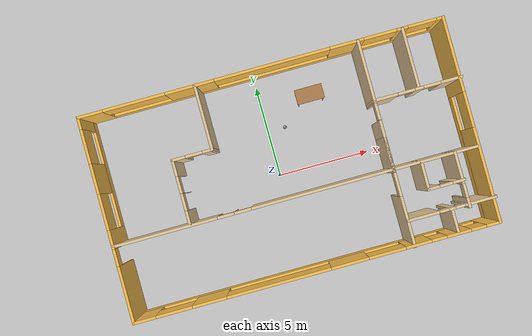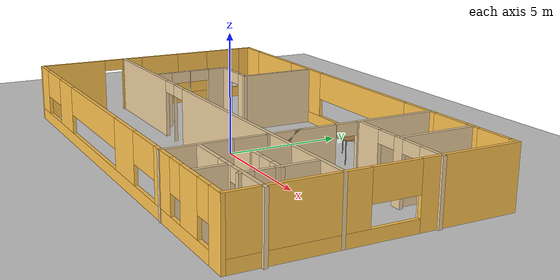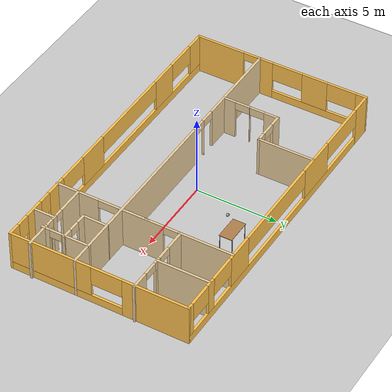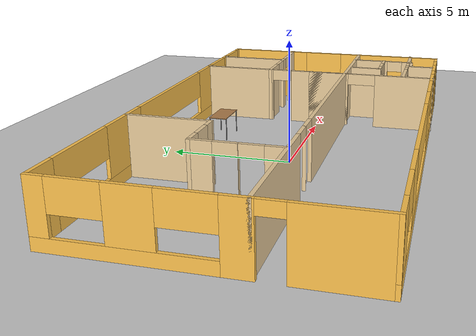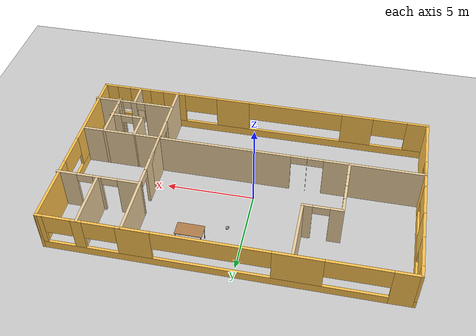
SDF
<sdf version="1.6">
 <world name="default">
  <model name="ground_plane">
   <static>1</static>
   <link name="link">
    <collision name="collision">
     <geometry><plane><normal>0 0 1</normal><size>100 100</size></plane></geometry>
     <surface>
      <contact><collide_bitmask>65535</collide_bitmask></contact>
      <friction><ode><mu>100</mu><mu2>50</mu2></ode></friction>
     </surface>
    </collision>
    <visual name="visual">
     <cast_shadows>0</cast_shadows>
     <geometry><plane><normal>0 0 1</normal><size>100 100</size></plane></geometry>
     <material>
      <script><uri>file://media/materials/scripts/gazebo.material</uri><name>Gazebo/Grey</name></script>
     </material>
    </visual>
   </link>
  </model>
  <model name="Untitled">
   <pose>0.58941 0.12908 0 0 -0 0</pose>
   <link name="Wall_10">
    <collision name="Wall_10_Collision">
     <geometry><box><size>3.5 0.15 2.5</size></box></geometry>
     <pose>0 0 1.25 0 -0 0</pose>
    </collision>
    <visual name="Wall_10_Visual">
     <pose>0 0 1.25 0 -0 0</pose>
     <geometry><box><size>3.5 0.15 2.5</size></box></geometry>
     <material>
      <script><uri>file://media/materials/scripts/gazebo.material</uri><name>Gazebo/Grey</name></script>
      <ambient>0.921569 0.807843 0.615686 1</ambient>
     </material>
     <meta><layer>0</layer></meta>
    </visual>
    <pose>-3.5542 3.7347 0 0 0 -1.5708</pose>
   </link>
   <link name="Wall_11">
    <pose>-4.6042 2.05971 0 0 -0 3.14159</pose>
    <visual name="Wall_11_Visual_0">
     <pose>-0.823056 0 1.25 0 -0 0</pose>
     <geometry><box><size>0.603887 0.15 2.5</size></box></geometry>
     <material>
      <script><uri>file://media/materials/scripts/gazebo.material</uri><name>Gazebo/Grey</name></script>
      <ambient>0.921569 0.807843 0.615686 1</ambient>
     </material>
     <meta><layer>0</layer></meta>
    </visual>
    <collision name="Wall_11_Collision_0">
     <geometry><box><size>0.603887 0.15 2.5</size></box></geometry>
     <pose>-0.823056 0 1.25 0 -0 0</pose>
    </collision>
    <visual name="Wall_11_Visual_1">
     <pose>0.751944 0 1.25 0 -0 0</pose>
     <geometry><box><size>0.746113 0.15 2.5</size></box></geometry>
     <material>
      <script><uri>file://media/materials/scripts/gazebo.material</uri><name>Gazebo/Grey</name></script>
      <ambient>0.921569 0.807843 0.615686 1</ambient>
     </material>
     <meta><layer>0</layer></meta>
    </visual>
    <collision name="Wall_11_Collision_1">
     <geometry><box><size>0.746113 0.15 2.5</size></box></geometry>
     <pose>0.751944 0 1.25 0 -0 0</pose>
    </collision>
    <visual name="Wall_11_Visual_2">
     <pose>-0.071113 0 2.25 0 -0 0</pose>
     <geometry><box><size>0.9 0.15 0.5</size></box></geometry>
     <material>
      <script><uri>file://media/materials/scripts/gazebo.material</uri><name>Gazebo/Grey</name></script>
      <ambient>0.921569 0.807843 0.615686 1</ambient>
     </material>
     <meta><layer>0</layer></meta>
    </visual>
    <collision name="Wall_11_Collision_2">
     <geometry><box><size>0.9 0.15 0.5</size></box></geometry>
     <pose>-0.071113 0 2.25 0 -0 0</pose>
    </collision>
   </link>
   <link name="Wall_14">
    <pose>-5.6542 0.384705 0 0 0 -1.5708</pose>
    <visual name="Wall_14_Visual_0">
     <pose>-1.28764 0 1.25 0 -0 0</pose>
     <geometry><box><size>0.924715 0.15 2.5</size></box></geometry>
     <material>
      <script><uri>file://media/materials/scripts/gazebo.material</uri><name>Gazebo/Grey</name></script>
      <ambient>0.921569 0.807843 0.615686 1</ambient>
     </material>
     <meta><layer>0</layer></meta>
    </visual>
    <collision name="Wall_14_Collision_0">
     <geometry><box><size>0.924715 0.15 2.5</size></box></geometry>
     <pose>-1.28764 0 1.25 0 -0 0</pose>
    </collision>
    <visual name="Wall_14_Visual_1">
     <pose>0.083568 0 1.25 0 -0 0</pose>
     <geometry><box><size>0.017707 0.15 2.5</size></box></geometry>
     <material>
      <script><uri>file://media/materials/scripts/gazebo.material</uri><name>Gazebo/Grey</name></script>
      <ambient>0.921569 0.807843 0.615686 1</ambient>
     </material>
     <meta><layer>0</layer></meta>
    </visual>
    <collision name="Wall_14_Collision_1">
     <geometry><box><size>0.017707 0.15 2.5</size></box></geometry>
     <pose>0.083568 0 1.25 0 -0 0</pose>
    </collision>
    <visual name="Wall_14_Visual_2">
     <pose>1.37121 0 1.25 0 -0 0</pose>
     <geometry><box><size>0.757578 0.15 2.5</size></box></geometry>
     <material>
      <script><uri>file://media/materials/scripts/gazebo.material</uri><name>Gazebo/Grey</name></script>
      <ambient>0.921569 0.807843 0.615686 1</ambient>
     </material>
     <meta><layer>0</layer></meta>
    </visual>
    <collision name="Wall_14_Collision_2">
     <geometry><box><size>0.757578 0.15 2.5</size></box></geometry>
     <pose>1.37121 0 1.25 0 -0 0</pose>
    </collision>
    <visual name="Wall_14_Visual_3">
     <pose>-0.375285 0 2.25 0 -0 0</pose>
     <geometry><box><size>0.9 0.15 0.5</size></box></geometry>
     <material>
      <script><uri>file://media/materials/scripts/gazebo.material</uri><name>Gazebo/Grey</name></script>
      <ambient>0.921569 0.807843 0.615686 1</ambient>
     </material>
     <meta><layer>0</layer></meta>
    </visual>
    <collision name="Wall_14_Collision_3">
     <geometry><box><size>0.9 0.15 0.5</size></box></geometry>
     <pose>-0.375285 0 2.25 0 -0 0</pose>
    </collision>
    <visual name="Wall_14_Visual_4">
     <pose>0.542422 0 2.25 0 -0 0</pose>
     <geometry><box><size>0.9 0.15 0.5</size></box></geometry>
     <material>
      <script><uri>file://media/materials/scripts/gazebo.material</uri><name>Gazebo/Grey</name></script>
      <ambient>0.921569 0.807843 0.615686 1</ambient>
     </material>
     <meta><layer>0</layer></meta>
    </visual>
    <collision name="Wall_14_Collision_4">
     <geometry><box><size>0.9 0.15 0.5</size></box></geometry>
     <pose>0.542422 0 2.25 0 -0 0</pose>
    </collision>
   </link>
   <link name="Wall_16">
    <pose>9.61657 0.015295 0 0 0 -1.5708</pose>
    <visual name="Wall_16_Visual_0">
     <pose>-3.48747 0 1.25 0 -0 0</pose>
     <geometry><box><size>4.02505 0.15 2.5</size></box></geometry>
     <material>
      <script><uri>file://media/materials/scripts/gazebo.material</uri><name>Gazebo/Grey</name></script>
      <ambient>1 0.764706 0.305882 1</ambient>
     </material>
     <meta><layer>0</layer></meta>
    </visual>
    <collision name="Wall_16_Collision_0">
     <geometry><box><size>4.02505 0.15 2.5</size></box></geometry>
     <pose>-3.48747 0 1.25 0 -0 0</pose>
    </collision>
    <visual name="Wall_16_Visual_1">
     <pose>2.01253 0 0.25 0 -0 0</pose>
     <geometry><box><size>6.97495 0.15 0.5</size></box></geometry>
     <material>
      <script><uri>file://media/materials/scripts/gazebo.material</uri><name>Gazebo/Grey</name></script>
      <ambient>1 0.764706 0.305882 1</ambient>
     </material>
     <meta><layer>0</layer></meta>
    </visual>
    <collision name="Wall_16_Collision_1">
     <geometry><box><size>6.97495 0.15 0.5</size></box></geometry>
     <pose>2.01253 0 0.25 0 -0 0</pose>
    </collision>
    <visual name="Wall_16_Visual_2">
     <pose>2.95609 0 1.5 0 -0 0</pose>
     <geometry><box><size>5.08781 0.15 2</size></box></geometry>
     <material>
      <script><uri>file://media/materials/scripts/gazebo.material</uri><name>Gazebo/Grey</name></script>
      <ambient>1 0.764706 0.305882 1</ambient>
     </material>
     <meta><layer>0</layer></meta>
    </visual>
    <collision name="Wall_16_Collision_2">
     <geometry><box><size>5.08781 0.15 2</size></box></geometry>
     <pose>2.95609 0 1.5 0 -0 0</pose>
    </collision>
    <visual name="Wall_16_Visual_3">
     <pose>-0.531379 0 1.9 0 -0 0</pose>
     <geometry><box><size>1.88714 0.15 1.2</size></box></geometry>
     <material>
      <script><uri>file://media/materials/scripts/gazebo.material</uri><name>Gazebo/Grey</name></script>
      <ambient>1 0.764706 0.305882 1</ambient>
     </material>
     <meta><layer>0</layer></meta>
    </visual>
    <collision name="Wall_16_Collision_3">
     <geometry><box><size>1.88714 0.15 1.2</size></box></geometry>
     <pose>-0.531379 0 1.9 0 -0 0</pose>
    </collision>
   </link>
   <link name="Wall_17">
    <pose>-0.058425 -5.4097 0 0 -0 3.14159</pose>
    <visual name="Wall_17_Visual_0">
     <pose>-9.34664 0 1.25 0 -0 0</pose>
     <geometry><box><size>0.806721 0.15 2.5</size></box></geometry>
     <material>
      <script><uri>file://media/materials/scripts/gazebo.material</uri><name>Gazebo/Grey</name></script>
      <ambient>1 0.764706 0.305882 1</ambient>
     </material>
     <meta><layer>0</layer></meta>
    </visual>
    <collision name="Wall_17_Collision_0">
     <geometry><box><size>0.806721 0.15 2.5</size></box></geometry>
     <pose>-9.34664 0 1.25 0 -0 0</pose>
    </collision>
    <visual name="Wall_17_Visual_1">
     <pose>0.403361 0 0.25 0 -0 0</pose>
     <geometry><box><size>18.6933 0.15 0.5</size></box></geometry>
     <material>
      <script><uri>file://media/materials/scripts/gazebo.material</uri><name>Gazebo/Grey</name></script>
      <ambient>1 0.764706 0.305882 1</ambient>
     </material>
     <meta><layer>0</layer></meta>
    </visual>
    <collision name="Wall_17_Collision_1">
     <geometry><box><size>18.6933 0.15 0.5</size></box></geometry>
     <pose>0.403361 0 0.25 0 -0 0</pose>
    </collision>
    <visual name="Wall_17_Visual_2">
     <pose>-7.5024 0 1.5 0 -0 0</pose>
     <geometry><box><size>1.28175 0.15 2</size></box></geometry>
     <material>
      <script><uri>file://media/materials/scripts/gazebo.material</uri><name>Gazebo/Grey</name></script>
      <ambient>1 0.764706 0.305882 1</ambient>
     </material>
     <meta><layer>0</layer></meta>
    </visual>
    <collision name="Wall_17_Collision_2">
     <geometry><box><size>1.28175 0.15 2</size></box></geometry>
     <pose>-7.5024 0 1.5 0 -0 0</pose>
    </collision>
    <visual name="Wall_17_Visual_3">
     <pose>-5.38313 0 1.5 0 -0 0</pose>
     <geometry><box><size>1.35679 0.15 2</size></box></geometry>
     <material>
      <script><uri>file://media/materials/scripts/gazebo.material</uri><name>Gazebo/Grey</name></script>
      <ambient>1 0.764706 0.305882 1</ambient>
     </material>
     <meta><layer>0</layer></meta>
    </visual>
    <collision name="Wall_17_Collision_3">
     <geometry><box><size>1.35679 0.15 2</size></box></geometry>
     <pose>-5.38313 0 1.5 0 -0 0</pose>
    </collision>
    <visual name="Wall_17_Visual_4">
     <pose>-1.74867 0 1.5 0 -0 0</pose>
     <geometry><box><size>1.98726 0.15 2</size></box></geometry>
     <material>
      <script><uri>file://media/materials/scripts/gazebo.material</uri><name>Gazebo/Grey</name></script>
      <ambient>1 0.764706 0.305882 1</ambient>
     </material>
     <meta><layer>0</layer></meta>
    </visual>
    <collision name="Wall_17_Collision_4">
     <geometry><box><size>1.98726 0.15 2</size></box></geometry>
     <pose>-1.74867 0 1.5 0 -0 0</pose>
    </collision>
    <visual name="Wall_17_Visual_5">
     <pose>5.67048 0 1.5 0 -0 0</pose>
     <geometry><box><size>1.81376 0.15 2</size></box></geometry>
     <material>
      <script><uri>file://media/materials/scripts/gazebo.material</uri><name>Gazebo/Grey</name></script>
      <ambient>1 0.764706 0.305882 1</ambient>
     </material>
     <meta><layer>0</layer></meta>
    </visual>
    <collision name="Wall_17_Collision_5">
     <geometry><box><size>1.81376 0.15 2</size></box></geometry>
     <pose>5.67048 0 1.5 0 -0 0</pose>
    </collision>
    <visual name="Wall_17_Visual_6">
     <pose>9.13038 0 1.5 0 -0 0</pose>
     <geometry><box><size>1.23924 0.15 2</size></box></geometry>
     <material>
      <script><uri>file://media/materials/scripts/gazebo.material</uri><name>Gazebo/Grey</name></script>
      <ambient>1 0.764706 0.305882 1</ambient>
     </material>
     <meta><layer>0</layer></meta>
    </visual>
    <collision name="Wall_17_Collision_6">
     <geometry><box><size>1.23924 0.15 2</size></box></geometry>
     <pose>9.13038 0 1.5 0 -0 0</pose>
    </collision>
    <visual name="Wall_17_Visual_7">
     <pose>-8.54328 0 1.9 0 -0 0</pose>
     <geometry><box><size>0.8 0.15 1.2</size></box></geometry>
     <material>
      <script><uri>file://media/materials/scripts/gazebo.material</uri><name>Gazebo/Grey</name></script>
      <ambient>1 0.764706 0.305882 1</ambient>
     </material>
     <meta><layer>0</layer></meta>
    </visual>
    <collision name="Wall_17_Collision_7">
     <geometry><box><size>0.8 0.15 1.2</size></box></geometry>
     <pose>-8.54328 0 1.9 0 -0 0</pose>
    </collision>
    <visual name="Wall_17_Visual_8">
     <pose>-6.46152 0 1.9 0 -0 0</pose>
     <geometry><box><size>0.8 0.15 1.2</size></box></geometry>
     <material>
      <script><uri>file://media/materials/scripts/gazebo.material</uri><name>Gazebo/Grey</name></script>
      <ambient>1 0.764706 0.305882 1</ambient>
     </material>
     <meta><layer>0</layer></meta>
    </visual>
    <collision name="Wall_17_Collision_8">
     <geometry><box><size>0.8 0.15 1.2</size></box></geometry>
     <pose>-6.46152 0 1.9 0 -0 0</pose>
    </collision>
    <visual name="Wall_17_Visual_9">
     <pose>-3.72352 0 1.9 0 -0 0</pose>
     <geometry><box><size>1.96243 0.15 1.2</size></box></geometry>
     <material>
      <script><uri>file://media/materials/scripts/gazebo.material</uri><name>Gazebo/Grey</name></script>
      <ambient>1 0.764706 0.305882 1</ambient>
     </material>
     <meta><layer>0</layer></meta>
    </visual>
    <collision name="Wall_17_Collision_9">
     <geometry><box><size>1.96243 0.15 1.2</size></box></geometry>
     <pose>-3.72352 0 1.9 0 -0 0</pose>
    </collision>
    <visual name="Wall_17_Visual_10">
     <pose>2.00428 0 1.9 0 -0 0</pose>
     <geometry><box><size>5.51864 0.15 1.2</size></box></geometry>
     <material>
      <script><uri>file://media/materials/scripts/gazebo.material</uri><name>Gazebo/Grey</name></script>
      <ambient>1 0.764706 0.305882 1</ambient>
     </material>
     <meta><layer>0</layer></meta>
    </visual>
    <collision name="Wall_17_Collision_10">
     <geometry><box><size>5.51864 0.15 1.2</size></box></geometry>
     <pose>2.00428 0 1.9 0 -0 0</pose>
    </collision>
    <visual name="Wall_17_Visual_11">
     <pose>7.54406 0 1.9 0 -0 0</pose>
     <geometry><box><size>1.9334 0.15 1.2</size></box></geometry>
     <material>
      <script><uri>file://media/materials/scripts/gazebo.material</uri><name>Gazebo/Grey</name></script>
      <ambient>1 0.764706 0.305882 1</ambient>
     </material>
     <meta><layer>0</layer></meta>
    </visual>
    <collision name="Wall_17_Collision_11">
     <geometry><box><size>1.9334 0.15 1.2</size></box></geometry>
     <pose>7.54406 0 1.9 0 -0 0</pose>
    </collision>
   </link>
   <link name="Wall_18">
    <pose>-9.73343 0.015295 0 0 -0 1.5708</pose>
    <visual name="Wall_18_Visual_0">
     <pose>-3.96666 0 1.25 0 -0 0</pose>
     <geometry><box><size>3.06668 0.15 2.5</size></box></geometry>
     <material>
      <script><uri>file://media/materials/scripts/gazebo.material</uri><name>Gazebo/Grey</name></script>
      <ambient>1 0.764706 0.305882 1</ambient>
     </material>
     <meta><layer>0</layer></meta>
    </visual>
    <collision name="Wall_18_Collision_0">
     <geometry><box><size>3.06668 0.15 2.5</size></box></geometry>
     <pose>-3.96666 0 1.25 0 -0 0</pose>
    </collision>
    <visual name="Wall_18_Visual_1">
     <pose>-1.03058 0 1.25 0 -0 0</pose>
     <geometry><box><size>1.00548 0.15 2.5</size></box></geometry>
     <material>
      <script><uri>file://media/materials/scripts/gazebo.material</uri><name>Gazebo/Grey</name></script>
      <ambient>1 0.764706 0.305882 1</ambient>
     </material>
     <meta><layer>0</layer></meta>
    </visual>
    <collision name="Wall_18_Collision_1">
     <geometry><box><size>1.00548 0.15 2.5</size></box></geometry>
     <pose>-1.03058 0 1.25 0 -0 0</pose>
    </collision>
    <visual name="Wall_18_Visual_2">
     <pose>2.48608 0 0.25 0 -0 0</pose>
     <geometry><box><size>6.02784 0.15 0.5</size></box></geometry>
     <material>
      <script><uri>file://media/materials/scripts/gazebo.material</uri><name>Gazebo/Grey</name></script>
      <ambient>1 0.764706 0.305882 1</ambient>
     </material>
     <meta><layer>0</layer></meta>
    </visual>
    <collision name="Wall_18_Collision_2">
     <geometry><box><size>6.02784 0.15 0.5</size></box></geometry>
     <pose>2.48608 0 0.25 0 -0 0</pose>
    </collision>
    <visual name="Wall_18_Visual_3">
     <pose>2.18522 0 1.5 0 -0 0</pose>
     <geometry><box><size>1.60558 0.15 2</size></box></geometry>
     <material>
      <script><uri>file://media/materials/scripts/gazebo.material</uri><name>Gazebo/Grey</name></script>
      <ambient>1 0.764706 0.305882 1</ambient>
     </material>
     <meta><layer>0</layer></meta>
    </visual>
    <collision name="Wall_18_Collision_3">
     <geometry><box><size>1.60558 0.15 2</size></box></geometry>
     <pose>2.18522 0 1.5 0 -0 0</pose>
    </collision>
    <visual name="Wall_18_Visual_4">
     <pose>5.15288 0 1.5 0 -0 0</pose>
     <geometry><box><size>0.694244 0.15 2</size></box></geometry>
     <material>
      <script><uri>file://media/materials/scripts/gazebo.material</uri><name>Gazebo/Grey</name></script>
      <ambient>1 0.764706 0.305882 1</ambient>
     </material>
     <meta><layer>0</layer></meta>
    </visual>
    <collision name="Wall_18_Collision_4">
     <geometry><box><size>0.694244 0.15 2</size></box></geometry>
     <pose>5.15288 0 1.5 0 -0 0</pose>
    </collision>
    <visual name="Wall_18_Visual_5">
     <pose>0.427291 0 1.9 0 -0 0</pose>
     <geometry><box><size>1.91027 0.15 1.2</size></box></geometry>
     <material>
      <script><uri>file://media/materials/scripts/gazebo.material</uri><name>Gazebo/Grey</name></script>
      <ambient>1 0.764706 0.305882 1</ambient>
     </material>
     <meta><layer>0</layer></meta>
    </visual>
    <collision name="Wall_18_Collision_5">
     <geometry><box><size>1.91027 0.15 1.2</size></box></geometry>
     <pose>0.427291 0 1.9 0 -0 0</pose>
    </collision>
    <visual name="Wall_18_Visual_6">
     <pose>3.89688 0 1.9 0 -0 0</pose>
     <geometry><box><size>1.81775 0.15 1.2</size></box></geometry>
     <material>
      <script><uri>file://media/materials/scripts/gazebo.material</uri><name>Gazebo/Grey</name></script>
      <ambient>1 0.764706 0.305882 1</ambient>
     </material>
     <meta><layer>0</layer></meta>
    </visual>
    <collision name="Wall_18_Collision_6">
     <geometry><box><size>1.81775 0.15 1.2</size></box></geometry>
     <pose>3.89688 0 1.9 0 -0 0</pose>
    </collision>
    <visual name="Wall_18_Visual_7">
     <pose>-1.98332 0 2.25 0 -0 0</pose>
     <geometry><box><size>0.9 0.15 0.5</size></box></geometry>
     <material>
      <script><uri>file://media/materials/scripts/gazebo.material</uri><name>Gazebo/Grey</name></script>
      <ambient>1 0.764706 0.305882 1</ambient>
     </material>
     <meta><layer>0</layer></meta>
    </visual>
    <collision name="Wall_18_Collision_7">
     <geometry><box><size>0.9 0.15 0.5</size></box></geometry>
     <pose>-1.98332 0 2.25 0 -0 0</pose>
    </collision>
   </link>
   <link name="Wall_20">
    <pose>-0.058425 -1.38133 0 0 -0 0</pose>
    <visual name="Wall_20_Visual_0">
     <pose>-6.96126 0 1.25 0 -0 0</pose>
     <geometry><box><size>5.57748 0.15 2.5</size></box></geometry>
     <material>
      <script><uri>file://media/materials/scripts/gazebo.material</uri><name>Gazebo/Grey</name></script>
      <ambient>0.921569 0.807843 0.615686 1</ambient>
     </material>
     <meta><layer>0</layer></meta>
    </visual>
    <collision name="Wall_20_Collision_0">
     <geometry><box><size>5.57748 0.15 2.5</size></box></geometry>
     <pose>-6.96126 0 1.25 0 -0 0</pose>
    </collision>
    <visual name="Wall_20_Visual_1">
     <pose>-3.26996 0 1.25 0 -0 0</pose>
     <geometry><box><size>0.005111 0.15 2.5</size></box></geometry>
     <material>
      <script><uri>file://media/materials/scripts/gazebo.material</uri><name>Gazebo/Grey</name></script>
      <ambient>0.921569 0.807843 0.615686 1</ambient>
     </material>
     <meta><layer>0</layer></meta>
    </visual>
    <collision name="Wall_20_Collision_1">
     <geometry><box><size>0.005111 0.15 2.5</size></box></geometry>
     <pose>-3.26996 0 1.25 0 -0 0</pose>
    </collision>
    <visual name="Wall_20_Visual_2">
     <pose>3.6913 0 1.25 0 -0 0</pose>
     <geometry><box><size>12.1174 0.15 2.5</size></box></geometry>
     <material>
      <script><uri>file://media/materials/scripts/gazebo.material</uri><name>Gazebo/Grey</name></script>
      <ambient>0.921569 0.807843 0.615686 1</ambient>
     </material>
     <meta><layer>0</layer></meta>
    </visual>
    <collision name="Wall_20_Collision_2">
     <geometry><box><size>12.1174 0.15 2.5</size></box></geometry>
     <pose>3.6913 0 1.25 0 -0 0</pose>
    </collision>
    <visual name="Wall_20_Visual_3">
     <pose>-3.72252 0 2.25 0 -0 0</pose>
     <geometry><box><size>0.9 0.15 0.5</size></box></geometry>
     <material>
      <script><uri>file://media/materials/scripts/gazebo.material</uri><name>Gazebo/Grey</name></script>
      <ambient>0.921569 0.807843 0.615686 1</ambient>
     </material>
     <meta><layer>0</layer></meta>
    </visual>
    <collision name="Wall_20_Collision_3">
     <geometry><box><size>0.9 0.15 0.5</size></box></geometry>
     <pose>-3.72252 0 2.25 0 -0 0</pose>
    </collision>
    <visual name="Wall_20_Visual_4">
     <pose>-2.81741 0 2.25 0 -0 0</pose>
     <geometry><box><size>0.9 0.15 0.5</size></box></geometry>
     <material>
      <script><uri>file://media/materials/scripts/gazebo.material</uri><name>Gazebo/Grey</name></script>
      <ambient>0.921569 0.807843 0.615686 1</ambient>
     </material>
     <meta><layer>0</layer></meta>
    </visual>
    <collision name="Wall_20_Collision_4">
     <geometry><box><size>0.9 0.15 0.5</size></box></geometry>
     <pose>-2.81741 0 2.25 0 -0 0</pose>
    </collision>
   </link>
   <link name="Wall_22">
    <pose>5.10284 -0.015295 0 0 0 -1.5708</pose>
    <visual name="Wall_22_Visual_0">
     <pose>-3.8169 0 1.25 0 -0 0</pose>
     <geometry><box><size>3.3662 0.15 2.5</size></box></geometry>
     <material>
      <script><uri>file://media/materials/scripts/gazebo.material</uri><name>Gazebo/Grey</name></script>
      <ambient>0.921569 0.807843 0.615686 1</ambient>
     </material>
     <meta><layer>0</layer></meta>
    </visual>
    <collision name="Wall_22_Collision_0">
     <geometry><box><size>3.3662 0.15 2.5</size></box></geometry>
     <pose>-3.8169 0 1.25 0 -0 0</pose>
    </collision>
    <visual name="Wall_22_Visual_1">
     <pose>0.14955 0 1.25 0 -0 0</pose>
     <geometry><box><size>2.76671 0.15 2.5</size></box></geometry>
     <material>
      <script><uri>file://media/materials/scripts/gazebo.material</uri><name>Gazebo/Grey</name></script>
      <ambient>0.921569 0.807843 0.615686 1</ambient>
     </material>
     <meta><layer>0</layer></meta>
    </visual>
    <collision name="Wall_22_Collision_1">
     <geometry><box><size>2.76671 0.15 2.5</size></box></geometry>
     <pose>0.14955 0 1.25 0 -0 0</pose>
    </collision>
    <visual name="Wall_22_Visual_2">
     <pose>0.589031 0 1.25 0 -0 0</pose>
     <geometry><box><size>1.88774 0.15 2.5</size></box></geometry>
     <material>
      <script><uri>file://media/materials/scripts/gazebo.material</uri><name>Gazebo/Grey</name></script>
      <ambient>0.921569 0.807843 0.615686 1</ambient>
     </material>
     <meta><layer>0</layer></meta>
    </visual>
    <collision name="Wall_22_Collision_2">
     <geometry><box><size>1.88774 0.15 2.5</size></box></geometry>
     <pose>0.589031 0 1.25 0 -0 0</pose>
    </collision>
    <visual name="Wall_22_Visual_3">
     <pose>4.14747 0 1.25 0 -0 0</pose>
     <geometry><box><size>2.70505 0.15 2.5</size></box></geometry>
     <material>
      <script><uri>file://media/materials/scripts/gazebo.material</uri><name>Gazebo/Grey</name></script>
      <ambient>0.921569 0.807843 0.615686 1</ambient>
     </material>
     <meta><layer>0</layer></meta>
    </visual>
    <collision name="Wall_22_Collision_3">
     <geometry><box><size>2.70505 0.15 2.5</size></box></geometry>
     <pose>4.14747 0 1.25 0 -0 0</pose>
    </collision>
    <visual name="Wall_22_Visual_4">
     <pose>-1.69432 0 2.25 0 -0 0</pose>
     <geometry><box><size>0.878963 0.15 0.5</size></box></geometry>
     <material>
      <script><uri>file://media/materials/scripts/gazebo.material</uri><name>Gazebo/Grey</name></script>
      <ambient>0.921569 0.807843 0.615686 1</ambient>
     </material>
     <meta><layer>0</layer></meta>
    </visual>
    <collision name="Wall_22_Collision_4">
     <geometry><box><size>0.878963 0.15 0.5</size></box></geometry>
     <pose>-1.69432 0 2.25 0 -0 0</pose>
    </collision>
    <visual name="Wall_22_Visual_5">
     <pose>2.16392 0 2.25 0 -0 0</pose>
     <geometry><box><size>1.26204 0.15 0.5</size></box></geometry>
     <material>
      <script><uri>file://media/materials/scripts/gazebo.material</uri><name>Gazebo/Grey</name></script>
      <ambient>0.921569 0.807843 0.615686 1</ambient>
     </material>
     <meta><layer>0</layer></meta>
    </visual>
    <collision name="Wall_22_Collision_5">
     <geometry><box><size>1.26204 0.15 0.5</size></box></geometry>
     <pose>2.16392 0 2.25 0 -0 0</pose>
    </collision>
    <visual name="Wall_22_Visual_6">
     <pose>2.16392 0 2.25 0 -0 0</pose>
     <geometry><box><size>1.26204 0.15 0.5</size></box></geometry>
     <material>
      <script><uri>file://media/materials/scripts/gazebo.material</uri><name>Gazebo/Grey</name></script>
      <ambient>0.921569 0.807843 0.615686 1</ambient>
     </material>
     <meta><layer>0</layer></meta>
    </visual>
    <collision name="Wall_22_Collision_6">
     <geometry><box><size>1.26204 0.15 0.5</size></box></geometry>
     <pose>2.16392 0 2.25 0 -0 0</pose>
    </collision>
   </link>
   <link name="Wall_24">
    <pose>7.40284 2.25891 0 0 -0 0</pose>
    <visual name="Wall_24_Visual_0">
     <pose>-1.71576 0 1.25 0 -0 0</pose>
     <geometry><box><size>1.31848 0.15 2.5</size></box></geometry>
     <material>
      <script><uri>file://media/materials/scripts/gazebo.material</uri><name>Gazebo/Grey</name></script>
      <ambient>0.921569 0.807843 0.615686 1</ambient>
     </material>
     <meta><layer>0</layer></meta>
    </visual>
    <collision name="Wall_24_Collision_0">
     <geometry><box><size>1.31848 0.15 2.5</size></box></geometry>
     <pose>-1.71576 0 1.25 0 -0 0</pose>
    </collision>
    <visual name="Wall_24_Visual_1">
     <pose>0.075836 0 1.25 0 -0 0</pose>
     <geometry><box><size>0.464706 0.15 2.5</size></box></geometry>
     <material>
      <script><uri>file://media/materials/scripts/gazebo.material</uri><name>Gazebo/Grey</name></script>
      <ambient>0.921569 0.807843 0.615686 1</ambient>
     </material>
     <meta><layer>0</layer></meta>
    </visual>
    <collision name="Wall_24_Collision_1">
     <geometry><box><size>0.464706 0.15 2.5</size></box></geometry>
     <pose>0.075836 0 1.25 0 -0 0</pose>
    </collision>
    <visual name="Wall_24_Visual_2">
     <pose>1.7916 0 1.25 0 -0 0</pose>
     <geometry><box><size>1.16681 0.15 2.5</size></box></geometry>
     <material>
      <script><uri>file://media/materials/scripts/gazebo.material</uri><name>Gazebo/Grey</name></script>
      <ambient>0.921569 0.807843 0.615686 1</ambient>
     </material>
     <meta><layer>0</layer></meta>
    </visual>
    <collision name="Wall_24_Collision_2">
     <geometry><box><size>1.16681 0.15 2.5</size></box></geometry>
     <pose>1.7916 0 1.25 0 -0 0</pose>
    </collision>
    <visual name="Wall_24_Visual_3">
     <pose>-0.606517 0 2.25 0 -0 0</pose>
     <geometry><box><size>0.9 0.15 0.5</size></box></geometry>
     <material>
      <script><uri>file://media/materials/scripts/gazebo.material</uri><name>Gazebo/Grey</name></script>
      <ambient>0.921569 0.807843 0.615686 1</ambient>
     </material>
     <meta><layer>0</layer></meta>
    </visual>
    <collision name="Wall_24_Collision_3">
     <geometry><box><size>0.9 0.15 0.5</size></box></geometry>
     <pose>-0.606517 0 2.25 0 -0 0</pose>
    </collision>
    <visual name="Wall_24_Visual_4">
     <pose>0.758189 0 2.25 0 -0 0</pose>
     <geometry><box><size>0.9 0.15 0.5</size></box></geometry>
     <material>
      <script><uri>file://media/materials/scripts/gazebo.material</uri><name>Gazebo/Grey</name></script>
      <ambient>0.921569 0.807843 0.615686 1</ambient>
     </material>
     <meta><layer>0</layer></meta>
    </visual>
    <collision name="Wall_24_Collision_4">
     <geometry><box><size>0.9 0.15 0.5</size></box></geometry>
     <pose>0.758189 0 2.25 0 -0 0</pose>
    </collision>
   </link>
   <link name="Wall_26">
    <collision name="Wall_26_Collision">
     <geometry><box><size>3.25 0.15 2.5</size></box></geometry>
     <pose>0 0 1.25 0 -0 0</pose>
    </collision>
    <visual name="Wall_26_Visual">
     <pose>0 0 1.25 0 -0 0</pose>
     <geometry><box><size>3.25 0.15 2.5</size></box></geometry>
     <material>
      <script><uri>file://media/materials/scripts/gazebo.material</uri><name>Gazebo/Grey</name></script>
      <ambient>0.921569 0.807843 0.615686 1</ambient>
     </material>
     <meta><layer>0</layer></meta>
    </visual>
    <pose>7.45828 3.8597 0 0 0 -1.5708</pose>
   </link>
   <link name="Wall_28">
    <pose>7.43343 -4.10386 0 0 -0 0</pose>
    <visual name="Wall_28_Visual_0">
     <pose>-1.5171 0 1.25 0 -0 0</pose>
     <geometry><box><size>1.71581 0.15 2.5</size></box></geometry>
     <material>
      <script><uri>file://media/materials/scripts/gazebo.material</uri><name>Gazebo/Grey</name></script>
      <ambient>0.921569 0.807843 0.615686 1</ambient>
     </material>
     <meta><layer>0</layer></meta>
    </visual>
    <collision name="Wall_28_Collision_0">
     <geometry><box><size>1.71581 0.15 2.5</size></box></geometry>
     <pose>-1.5171 0 1.25 0 -0 0</pose>
    </collision>
    <visual name="Wall_28_Visual_1">
     <pose>0.022115 0 1.25 0 -0 0</pose>
     <geometry><box><size>0.349052 0.15 2.5</size></box></geometry>
     <material>
      <script><uri>file://media/materials/scripts/gazebo.material</uri><name>Gazebo/Grey</name></script>
      <ambient>0.921569 0.807843 0.615686 1</ambient>
     </material>
     <meta><layer>0</layer></meta>
    </visual>
    <collision name="Wall_28_Collision_1">
     <geometry><box><size>0.349052 0.15 2.5</size></box></geometry>
     <pose>0.022115 0 1.25 0 -0 0</pose>
    </collision>
    <visual name="Wall_28_Visual_2">
     <pose>1.53921 0 1.25 0 -0 0</pose>
     <geometry><box><size>1.67158 0.15 2.5</size></box></geometry>
     <material>
      <script><uri>file://media/materials/scripts/gazebo.material</uri><name>Gazebo/Grey</name></script>
      <ambient>0.921569 0.807843 0.615686 1</ambient>
     </material>
     <meta><layer>0</layer></meta>
    </visual>
    <collision name="Wall_28_Collision_2">
     <geometry><box><size>1.67158 0.15 2.5</size></box></geometry>
     <pose>1.53921 0 1.25 0 -0 0</pose>
    </collision>
    <visual name="Wall_28_Visual_3">
     <pose>-0.405801 0 2.25 0 -0 0</pose>
     <geometry><box><size>0.50678 0.15 0.5</size></box></geometry>
     <material>
      <script><uri>file://media/materials/scripts/gazebo.material</uri><name>Gazebo/Grey</name></script>
      <ambient>0.921569 0.807843 0.615686 1</ambient>
     </material>
     <meta><layer>0</layer></meta>
    </visual>
    <collision name="Wall_28_Collision_3">
     <geometry><box><size>0.50678 0.15 0.5</size></box></geometry>
     <pose>-0.405801 0 2.25 0 -0 0</pose>
    </collision>
    <visual name="Wall_28_Visual_4">
     <pose>0.450031 0 2.25 0 -0 0</pose>
     <geometry><box><size>0.50678 0.15 0.5</size></box></geometry>
     <material>
      <script><uri>file://media/materials/scripts/gazebo.material</uri><name>Gazebo/Grey</name></script>
      <ambient>0.921569 0.807843 0.615686 1</ambient>
     </material>
     <meta><layer>0</layer></meta>
    </visual>
    <collision name="Wall_28_Collision_4">
     <geometry><box><size>0.50678 0.15 0.5</size></box></geometry>
     <pose>0.450031 0 2.25 0 -0 0</pose>
    </collision>
   </link>
   <link name="Wall_30">
    <pose>8.3454 -2.80633 0 0 0 -1.5708</pose>
    <visual name="Wall_30_Visual_0">
     <pose>-0.634862 0 1.25 0 -0 0</pose>
     <geometry><box><size>1.73028 0.15 2.5</size></box></geometry>
     <material>
      <script><uri>file://media/materials/scripts/gazebo.material</uri><name>Gazebo/Grey</name></script>
      <ambient>0.921569 0.807843 0.615686 1</ambient>
     </material>
     <meta><layer>0</layer></meta>
    </visual>
    <collision name="Wall_30_Collision_0">
     <geometry><box><size>1.73028 0.15 2.5</size></box></geometry>
     <pose>-0.634862 0 1.25 0 -0 0</pose>
    </collision>
    <visual name="Wall_30_Visual_1">
     <pose>1.22463 0 1.25 0 -0 0</pose>
     <geometry><box><size>0.550746 0.15 2.5</size></box></geometry>
     <material>
      <script><uri>file://media/materials/scripts/gazebo.material</uri><name>Gazebo/Grey</name></script>
      <ambient>0.921569 0.807843 0.615686 1</ambient>
     </material>
     <meta><layer>0</layer></meta>
    </visual>
    <collision name="Wall_30_Collision_1">
     <geometry><box><size>0.550746 0.15 2.5</size></box></geometry>
     <pose>1.22463 0 1.25 0 -0 0</pose>
    </collision>
    <visual name="Wall_30_Visual_2">
     <pose>0.589765 0 2.25 0 -0 0</pose>
     <geometry><box><size>0.718978 0.15 0.5</size></box></geometry>
     <material>
      <script><uri>file://media/materials/scripts/gazebo.material</uri><name>Gazebo/Grey</name></script>
      <ambient>0.921569 0.807843 0.615686 1</ambient>
     </material>
     <meta><layer>0</layer></meta>
    </visual>
    <collision name="Wall_30_Collision_2">
     <geometry><box><size>0.718978 0.15 0.5</size></box></geometry>
     <pose>0.589765 0 2.25 0 -0 0</pose>
    </collision>
   </link>
   <link name="Wall_32">
    <collision name="Wall_32_Collision">
     <geometry><box><size>1.60934 0.15 2.5</size></box></geometry>
     <pose>0 0 1.25 0 -0 0</pose>
    </collision>
    <visual name="Wall_32_Visual">
     <pose>0 0 1.25 0 -0 0</pose>
     <geometry><box><size>1.60934 0.15 2.5</size></box></geometry>
     <material>
      <script><uri>file://media/materials/scripts/gazebo.material</uri><name>Gazebo/Grey</name></script>
      <ambient>0.921569 0.807843 0.615686 1</ambient>
     </material>
     <meta><layer>0</layer></meta>
    </visual>
    <pose>6.56111 -2.11093 0 0 0 -1.58458</pose>
   </link>
   <link name="Wall_33">
    <pose>7.49617 -2.84053 0 0 -0 0</pose>
    <visual name="Wall_33_Visual_0">
     <pose>-0.676442 0 1.25 0 -0 0</pose>
     <geometry><box><size>0.647116 0.15 2.5</size></box></geometry>
     <material>
      <script><uri>file://media/materials/scripts/gazebo.material</uri><name>Gazebo/Grey</name></script>
      <ambient>0.921569 0.807843 0.615686 1</ambient>
     </material>
     <meta><layer>0</layer></meta>
    </visual>
    <collision name="Wall_33_Collision_0">
     <geometry><box><size>0.647116 0.15 2.5</size></box></geometry>
     <pose>-0.676442 0 1.25 0 -0 0</pose>
    </collision>
    <visual name="Wall_33_Visual_1">
     <pose>0.662933 0 1.25 0 -0 0</pose>
     <geometry><box><size>0.674133 0.15 2.5</size></box></geometry>
     <material>
      <script><uri>file://media/materials/scripts/gazebo.material</uri><name>Gazebo/Grey</name></script>
      <ambient>0.921569 0.807843 0.615686 1</ambient>
     </material>
     <meta><layer>0</layer></meta>
    </visual>
    <collision name="Wall_33_Collision_1">
     <geometry><box><size>0.674133 0.15 2.5</size></box></geometry>
     <pose>0.662933 0 1.25 0 -0 0</pose>
    </collision>
    <visual name="Wall_33_Visual_2">
     <pose>-0.013509 0 2.25 0 -0 0</pose>
     <geometry><box><size>0.678751 0.15 0.5</size></box></geometry>
     <material>
      <script><uri>file://media/materials/scripts/gazebo.material</uri><name>Gazebo/Grey</name></script>
      <ambient>0.921569 0.807843 0.615686 1</ambient>
     </material>
     <meta><layer>0</layer></meta>
    </visual>
    <collision name="Wall_33_Collision_2">
     <geometry><box><size>0.678751 0.15 0.5</size></box></geometry>
     <pose>-0.013509 0 2.25 0 -0 0</pose>
    </collision>
   </link>
   <link name="Wall_35">
    <collision name="Wall_35_Collision">
     <geometry><box><size>1.25 0.15 2.5</size></box></geometry>
     <pose>0 0 1.25 0 -0 0</pose>
    </collision>
    <visual name="Wall_35_Visual">
     <pose>0 0 1.25 0 -0 0</pose>
     <geometry><box><size>1.25 0.15 2.5</size></box></geometry>
     <material>
      <script><uri>file://media/materials/scripts/gazebo.material</uri><name>Gazebo/Grey</name></script>
      <ambient>0.921569 0.807843 0.615686 1</ambient>
     </material>
     <meta><layer>0</layer></meta>
    </visual>
    <pose>7.42769 -4.74563 0 0 0 -1.5708</pose>
   </link>
   <link name="Wall_5">
    <pose>-0.058425 5.44029 0 0 -0 0</pose>
    <visual name="Wall_5_Visual_0">
     <pose>-9.06099 0 1.25 0 -0 0</pose>
     <geometry><box><size>1.37802 0.15 2.5</size></box></geometry>
     <material>
      <script><uri>file://media/materials/scripts/gazebo.material</uri><name>Gazebo/Grey</name></script>
      <ambient>1 0.764706 0.305882 1</ambient>
     </material>
     <meta><layer>0</layer></meta>
    </visual>
    <collision name="Wall_5_Collision_0">
     <geometry><box><size>1.37802 0.15 2.5</size></box></geometry>
     <pose>-9.06099 0 1.25 0 -0 0</pose>
    </collision>
    <visual name="Wall_5_Visual_1">
     <pose>0.689012 0 0.25 0 -0 0</pose>
     <geometry><box><size>18.122 0.15 0.5</size></box></geometry>
     <material>
      <script><uri>file://media/materials/scripts/gazebo.material</uri><name>Gazebo/Grey</name></script>
      <ambient>1 0.764706 0.305882 1</ambient>
     </material>
     <meta><layer>0</layer></meta>
    </visual>
    <collision name="Wall_5_Collision_1">
     <geometry><box><size>18.122 0.15 0.5</size></box></geometry>
     <pose>0.689012 0 0.25 0 -0 0</pose>
    </collision>
    <visual name="Wall_5_Visual_2">
     <pose>-3.77377 0 1.5 0 -0 0</pose>
     <geometry><box><size>2.6002 0.15 2</size></box></geometry>
     <material>
      <script><uri>file://media/materials/scripts/gazebo.material</uri><name>Gazebo/Grey</name></script>
      <ambient>1 0.764706 0.305882 1</ambient>
     </material>
     <meta><layer>0</layer></meta>
    </visual>
    <collision name="Wall_5_Collision_2">
     <geometry><box><size>2.6002 0.15 2</size></box></geometry>
     <pose>-3.77377 0 1.5 0 -0 0</pose>
    </collision>
    <visual name="Wall_5_Visual_3">
     <pose>4.57482 0 1.5 0 -0 0</pose>
     <geometry><box><size>1.81063 0.15 2</size></box></geometry>
     <material>
      <script><uri>file://media/materials/scripts/gazebo.material</uri><name>Gazebo/Grey</name></script>
      <ambient>1 0.764706 0.305882 1</ambient>
     </material>
     <meta><layer>0</layer></meta>
    </visual>
    <collision name="Wall_5_Collision_3">
     <geometry><box><size>1.81063 0.15 2</size></box></geometry>
     <pose>4.57482 0 1.5 0 -0 0</pose>
    </collision>
    <visual name="Wall_5_Visual_4">
     <pose>7.52436 0 1.5 0 -0 0</pose>
     <geometry><box><size>0.591855 0.15 2</size></box></geometry>
     <material>
      <script><uri>file://media/materials/scripts/gazebo.material</uri><name>Gazebo/Grey</name></script>
      <ambient>1 0.764706 0.305882 1</ambient>
     </material>
     <meta><layer>0</layer></meta>
    </visual>
    <collision name="Wall_5_Collision_4">
     <geometry><box><size>0.591855 0.15 2</size></box></geometry>
     <pose>7.52436 0 1.5 0 -0 0</pose>
    </collision>
    <visual name="Wall_5_Visual_5">
     <pose>9.53693 0 1.5 0 -0 0</pose>
     <geometry><box><size>0.426141 0.15 2</size></box></geometry>
     <material>
      <script><uri>file://media/materials/scripts/gazebo.material</uri><name>Gazebo/Grey</name></script>
      <ambient>1 0.764706 0.305882 1</ambient>
     </material>
     <meta><layer>0</layer></meta>
    </visual>
    <collision name="Wall_5_Collision_5">
     <geometry><box><size>0.426141 0.15 2</size></box></geometry>
     <pose>9.53693 0 1.5 0 -0 0</pose>
    </collision>
    <visual name="Wall_5_Visual_6">
     <pose>-6.72292 0 1.9 0 -0 0</pose>
     <geometry><box><size>3.29811 0.15 1.2</size></box></geometry>
     <material>
      <script><uri>file://media/materials/scripts/gazebo.material</uri><name>Gazebo/Grey</name></script>
      <ambient>1 0.764706 0.305882 1</ambient>
     </material>
     <meta><layer>0</layer></meta>
    </visual>
    <collision name="Wall_5_Collision_6">
     <geometry><box><size>3.29811 0.15 1.2</size></box></geometry>
     <pose>-6.72292 0 1.9 0 -0 0</pose>
    </collision>
    <visual name="Wall_5_Visual_7">
     <pose>0.597915 0 1.9 0 -0 0</pose>
     <geometry><box><size>6.14317 0.15 1.2</size></box></geometry>
     <material>
      <script><uri>file://media/materials/scripts/gazebo.material</uri><name>Gazebo/Grey</name></script>
      <ambient>1 0.764706 0.305882 1</ambient>
     </material>
     <meta><layer>0</layer></meta>
    </visual>
    <collision name="Wall_5_Collision_7">
     <geometry><box><size>6.14317 0.15 1.2</size></box></geometry>
     <pose>0.597915 0 1.9 0 -0 0</pose>
    </collision>
    <visual name="Wall_5_Visual_8">
     <pose>6.35428 0 1.9 0 -0 0</pose>
     <geometry><box><size>1.7483 0.15 1.2</size></box></geometry>
     <material>
      <script><uri>file://media/materials/scripts/gazebo.material</uri><name>Gazebo/Grey</name></script>
      <ambient>1 0.764706 0.305882 1</ambient>
     </material>
     <meta><layer>0</layer></meta>
    </visual>
    <collision name="Wall_5_Collision_8">
     <geometry><box><size>1.7483 0.15 1.2</size></box></geometry>
     <pose>6.35428 0 1.9 0 -0 0</pose>
    </collision>
    <visual name="Wall_5_Visual_9">
     <pose>8.57207 0 1.9 0 -0 0</pose>
     <geometry><box><size>1.50358 0.15 1.2</size></box></geometry>
     <material>
      <script><uri>file://media/materials/scripts/gazebo.material</uri><name>Gazebo/Grey</name></script>
      <ambient>1 0.764706 0.305882 1</ambient>
     </material>
     <meta><layer>0</layer></meta>
    </visual>
    <collision name="Wall_5_Collision_9">
     <geometry><box><size>1.50358 0.15 1.2</size></box></geometry>
     <pose>8.57207 0 1.9 0 -0 0</pose>
    </collision>
   </link>
   <static>1</static>
  </model>
  <model name="table_2">
   <static>1</static>
   <link name="link">
    <collision name="surface">
     <pose>0 0 1 0 -0 0</pose>
     <geometry><box><size>1.5 0.8 0.03</size></box></geometry>
     <surface><friction><ode><mu>0.6</mu><mu2>0.6</mu2></ode></friction></surface>
    </collision>
    <visual name="visual1">
     <pose>0 0 1 0 -0 0</pose>
     <geometry><box><size>1.5 0.8 0.03</size></box></geometry>
     <material>
      <script><uri>file://media/materials/scripts/gazebo.material</uri><name>Gazebo/Wood</name></script>
     </material>
    </visual>
    <collision name="front_left_leg">
     <pose>0.68 0.38 0.5 0 -0 0</pose>
     <geometry><cylinder><radius>0.02</radius><length>1</length></cylinder></geometry>
    </collision>
    <visual name="front_left_leg">
     <pose>0.68 0.38 0.5 0 -0 0</pose>
     <geometry><cylinder><radius>0.02</radius><length>1</length></cylinder></geometry>
     <material>
      <script><uri>file://media/materials/scripts/gazebo.material</uri><name>Gazebo/Grey</name></script>
     </material>
    </visual>
    <collision name="front_right_leg">
     <pose>0.68 -0.38 0.5 0 -0 0</pose>
     <geometry><cylinder><radius>0.02</radius><length>1</length></cylinder></geometry>
    </collision>
    <visual name="front_right_leg">
     <pose>0.68 -0.38 0.5 0 -0 0</pose>
     <geometry><cylinder><radius>0.02</radius><length>1</length></cylinder></geometry>
     <material>
      <script><uri>file://media/materials/scripts/gazebo.material</uri><name>Gazebo/Grey</name></script>
     </material>
    </visual>
    <collision name="back_right_leg">
     <pose>-0.68 -0.38 0.5 0 -0 0</pose>
     <geometry><cylinder><radius>0.02</radius><length>1</length></cylinder></geometry>
    </collision>
    <visual name="back_right_leg">
     <pose>-0.68 -0.38 0.5 0 -0 0</pose>
     <geometry><cylinder><radius>0.02</radius><length>1</length></cylinder></geometry>
     <material>
      <script><uri>file://media/materials/scripts/gazebo.material</uri><name>Gazebo/Grey</name></script>
     </material>
    </visual>
    <collision name="back_left_leg">
     <pose>-0.68 0.38 0.5 0 -0 0</pose>
     <geometry><cylinder><radius>0.02</radius><length>1</length></cylinder></geometry>
    </collision>
    <visual name="back_left_leg">
     <pose>-0.68 0.38 0.5 0 -0 0</pose>
     <geometry><cylinder><radius>0.02</radius><length>1</length></cylinder></geometry>
     <material>
      <script><uri>file://media/materials/scripts/gazebo.material</uri><name>Gazebo/Grey</name></script>
     </material>
    </visual>
   </link>
   <pose>2.68472 3.79007 0 0 -0 0</pose>
  </model>
  <model name="my_ball">
   <link name="link_0">
    <inertial>
     <mass>1</mass>
     <inertia><ixx>0.1</ixx><ixy>0</ixy><ixz>0</ixz><iyy>0.1</iyy><iyz>0</iyz><izz>0.1</izz></inertia>
    </inertial>
    <visual name="visual">
     <geometry><sphere><radius>0.1</radius></sphere></geometry>
     <material>
      <lighting>1</lighting>
      <script><uri>file://media/materials/scripts/gazebo.material</uri><name>Gazebo/Grey</name></script>
      <shader type="pixel"><normal_map>__default__</normal_map></shader>
      <ambient>1 1 1 1</ambient>
      <diffuse>1 1 1 1</diffuse>
      <specular>1 1 1 1</specular>
      <emissive>1 1 1 1</emissive>
     </material>
    </visual>
    <collision name="collision">
     <geometry><sphere><radius>0.1</radius></sphere></geometry>
     <surface>
      <friction>
       <ode><mu>1</mu><mu2>1</mu2><fdir1>0 0 0</fdir1><slip1>0</slip1><slip2>0</slip2></ode>
       <torsional>
        <coefficient>1</coefficient>
        <patch_radius>0</patch_radius>
        <surface_radius>0</surface_radius>
        <use_patch_radius>1</use_patch_radius>
        <ode><slip>0</slip></ode>
       </torsional>
      </friction>
      <bounce><restitution_coefficient>0</restitution_coefficient><threshold>1e+06</threshold></bounce>
      <contact>
       <collide_without_contact>0</collide_without_contact>
       <collide_without_contact_bitmask>1</collide_without_contact_bitmask>
       <collide_bitmask>1</collide_bitmask>
       <ode>
        <soft_cfm>0</soft_cfm>
        <soft_erp>0.2</soft_erp>
        <kp>1e+13</kp>
        <kd>1</kd>
        <max_vel>0.01</max_vel>
        <min_depth>0</min_depth>
       </ode>
       <bullet>
        <split_impulse>1</split_impulse>
        <split_impulse_penetration_threshold>-0.01</split_impulse_penetration_threshold>
        <soft_cfm>0</soft_cfm>
        <soft_erp>0.2</soft_erp>
        <kp>1e+13</kp>
        <kd>1</kd>
       </bullet>
      </contact>
     </surface>
    </collision>
   </link>
   <static>0</static>
   <pose>0.956603 2.50875 0.1 0 -0 0</pose>
  </model>
 </world>
</sdf>
